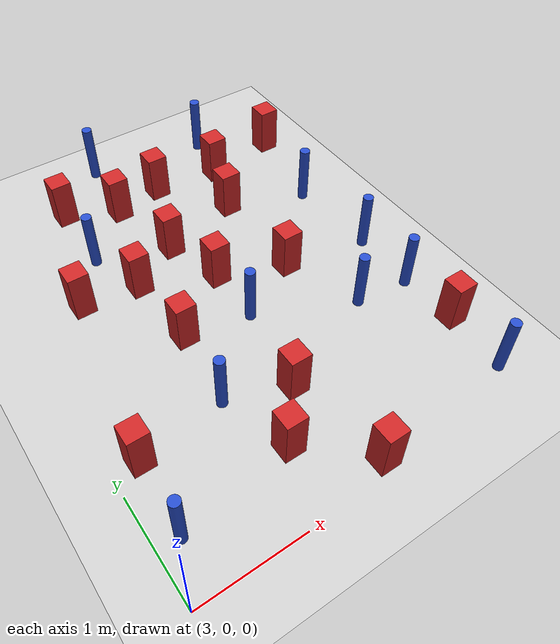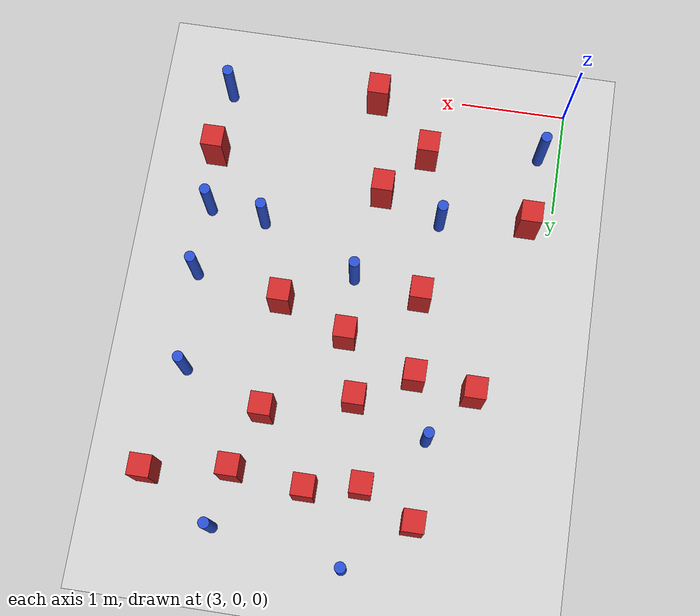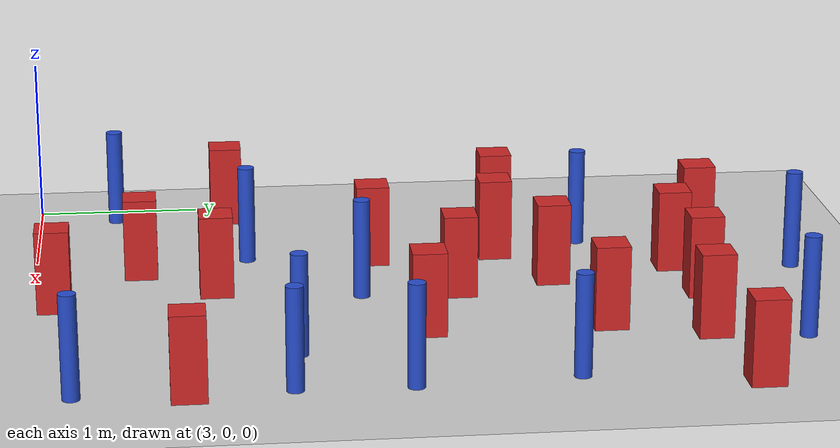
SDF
<sdf version="1.6">
 <world name="default">
  <model name="ground_plane">
   <static>1</static>
   <link name="link">
    <collision name="collision">
     <geometry><plane><normal>0 0 1</normal><size>100 100</size></plane></geometry>
     <surface><friction><ode><mu>100</mu><mu2>50</mu2></ode></friction></surface>
    </collision>
    <visual name="visual">
     <cast_shadows>0</cast_shadows>
     <geometry><plane><normal>0 0 1</normal><size>100 100</size></plane></geometry>
     <material>
      <ambient>1.0 1.0 1.0 1.0</ambient>
      <diffuse>0.8 0.8 0.8 1.0</diffuse>
      <specular>0.01 0.01 0.01 1.000000</specular>
     </material>
    </visual>
   </link>
  </model>
  <model name="pole_obstacle7">
   <static>true</static>
   <pose>6.24190343363 1.45891795342 7.38925637345e-09 -8.471706928e-08 1.24976765134e-08 -1.74513093015e-07</pose>
   <link name="link">
    <pose>0 0 0.3 0 -0 0</pose>
    <inertial>
     <mass>1</mass>
     <inertia><ixx>0.145833</ixx><ixy>0</ixy><ixz>0</ixz><iyy>0.145833</iyy><iyz>0</iyz><izz>0.125</izz></inertia>
    </inertial>
    <collision name="collision">
     <geometry><cylinder><radius>0.05</radius><length>.6</length></cylinder></geometry>
    </collision>
    <visual name="visual">
     <geometry><cylinder><radius>0.05</radius><length>.6</length></cylinder></geometry>
     <material>
      <script><name>Gazebo/Blue</name><uri>file://media/materials/scripts/gazebo.material</uri></script>
     </material>
    </visual>
   </link>
  </model>
  <model name="square_post_obstacle10">
   <static>true</static>
   <pose>3.24088928727 1.18970993105 1.91545236811e-07 -7.35059704564e-06 1.12565212e-07 2.39332434364e-05</pose>
   <link name="link">
    <pose>0 0 0.25 0 -0 0</pose>
    <inertial>
     <mass>100</mass>
     <inertia>
      <ixx>0.166667</ixx>
      <ixy>0</ixy>
      <ixz>0</ixz>
      <iyy>0.166667</iyy>
      <iyz>0</iyz>
      <izz>0.166667</izz>
     </inertia>
    </inertial>
    <collision name="collision"><geometry><box><size>.2 .2 .5</size></box></geometry></collision>
    <visual name="visual">
     <geometry><box><size>.2 .2 .5</size></box></geometry>
     <material>
      <script><name>Gazebo/Red</name><uri>file://media/materials/scripts/gazebo.material</uri></script>
     </material>
    </visual>
   </link>
  </model>
  <model name="pole_obstacle57">
   <static>true</static>
   <pose>5.71323885366 1.51683329573 7.38925637345e-09 -8.471706928e-08 1.24976765134e-08 -1.74513093015e-07</pose>
   <link name="link">
    <pose>0 0 0.3 0 -0 0</pose>
    <inertial>
     <mass>1</mass>
     <inertia><ixx>0.145833</ixx><ixy>0</ixy><ixz>0</ixz><iyy>0.145833</iyy><iyz>0</iyz><izz>0.125</izz></inertia>
    </inertial>
    <collision name="collision">
     <geometry><cylinder><radius>0.05</radius><length>.6</length></cylinder></geometry>
    </collision>
    <visual name="visual">
     <geometry><cylinder><radius>0.05</radius><length>.6</length></cylinder></geometry>
     <material>
      <script><name>Gazebo/Blue</name><uri>file://media/materials/scripts/gazebo.material</uri></script>
     </material>
    </visual>
   </link>
  </model>
  <model name="square_post_obstacle56">
   <static>true</static>
   <pose>3.54915562137 2.89608317039 1.91545236811e-07 -7.35059704564e-06 1.12565212e-07 2.39332434364e-05</pose>
   <link name="link">
    <pose>0 0 0.25 0 -0 0</pose>
    <inertial>
     <mass>100</mass>
     <inertia>
      <ixx>0.166667</ixx>
      <ixy>0</ixy>
      <ixz>0</ixz>
      <iyy>0.166667</iyy>
      <iyz>0</iyz>
      <izz>0.166667</izz>
     </inertia>
    </inertial>
    <collision name="collision"><geometry><box><size>.2 .2 .5</size></box></geometry></collision>
    <visual name="visual">
     <geometry><box><size>.2 .2 .5</size></box></geometry>
     <material>
      <script><name>Gazebo/Red</name><uri>file://media/materials/scripts/gazebo.material</uri></script>
     </material>
    </visual>
   </link>
  </model>
  <model name="square_post_obstacle57">
   <static>true</static>
   <pose>4.61116152091 3.10581729332 1.91545236811e-07 -7.35059704564e-06 1.12565212e-07 2.39332434364e-05</pose>
   <link name="link">
    <pose>0 0 0.25 0 -0 0</pose>
    <inertial>
     <mass>100</mass>
     <inertia>
      <ixx>0.166667</ixx>
      <ixy>0</ixy>
      <ixz>0</ixz>
      <iyy>0.166667</iyy>
      <iyz>0</iyz>
      <izz>0.166667</izz>
     </inertia>
    </inertial>
    <collision name="collision"><geometry><box><size>.2 .2 .5</size></box></geometry></collision>
    <visual name="visual">
     <geometry><box><size>.2 .2 .5</size></box></geometry>
     <material>
      <script><name>Gazebo/Red</name><uri>file://media/materials/scripts/gazebo.material</uri></script>
     </material>
    </visual>
   </link>
  </model>
  <model name="pole_obstacle74">
   <static>true</static>
   <pose>3.20152962979 0.485191721837 7.38925637345e-09 -8.47170692801e-08 1.24976765209e-08 -1.74513093011e-07</pose>
   <link name="link">
    <pose>0 0 0.3 0 -0 0</pose>
    <inertial>
     <mass>1</mass>
     <inertia><ixx>0.145833</ixx><ixy>0</ixy><ixz>0</ixz><iyy>0.145833</iyy><iyz>0</iyz><izz>0.125</izz></inertia>
    </inertial>
    <collision name="collision">
     <geometry><cylinder><radius>0.05</radius><length>.6</length></cylinder></geometry>
    </collision>
    <visual name="visual">
     <geometry><cylinder><radius>0.05</radius><length>.6</length></cylinder></geometry>
     <material>
      <script><name>Gazebo/Blue</name><uri>file://media/materials/scripts/gazebo.material</uri></script>
     </material>
    </visual>
   </link>
  </model>
  <model name="square_post_obstacle65">
   <static>true</static>
   <pose>6.36148696878 4.00992086524 1.91545236811e-07 -7.35059704564e-06 1.12565212e-07 2.39332434364e-05</pose>
   <link name="link">
    <pose>0 0 0.25 0 -0 0</pose>
    <inertial>
     <mass>100</mass>
     <inertia>
      <ixx>0.166667</ixx>
      <ixy>0</ixy>
      <ixz>0</ixz>
      <iyy>0.166667</iyy>
      <iyz>0</iyz>
      <izz>0.166667</izz>
     </inertia>
    </inertial>
    <collision name="collision"><geometry><box><size>.2 .2 .5</size></box></geometry></collision>
    <visual name="visual">
     <geometry><box><size>.2 .2 .5</size></box></geometry>
     <material>
      <script><name>Gazebo/Red</name><uri>file://media/materials/scripts/gazebo.material</uri></script>
     </material>
    </visual>
   </link>
  </model>
  <model name="pole_obstacle83">
   <static>true</static>
   <pose>4.06315226185 1.29344804844 7.38925637345e-09 -8.471706928e-08 1.24976765134e-08 -1.74513093015e-07</pose>
   <link name="link">
    <pose>0 0 0.3 0 -0 0</pose>
    <inertial>
     <mass>1</mass>
     <inertia><ixx>0.145833</ixx><ixy>0</ixy><ixz>0</ixz><iyy>0.145833</iyy><iyz>0</iyz><izz>0.125</izz></inertia>
    </inertial>
    <collision name="collision">
     <geometry><cylinder><radius>0.05</radius><length>.6</length></cylinder></geometry>
    </collision>
    <visual name="visual">
     <geometry><cylinder><radius>0.05</radius><length>.6</length></cylinder></geometry>
     <material>
      <script><name>Gazebo/Blue</name><uri>file://media/materials/scripts/gazebo.material</uri></script>
     </material>
    </visual>
   </link>
  </model>
  <model name="pole_obstacle86">
   <static>true</static>
   <pose>6.24404388155 0.258539240892 7.38925637345e-09 -8.47170692799e-08 1.24976765028e-08 -1.74513093019e-07</pose>
   <link name="link">
    <pose>0 0 0.3 0 -0 0</pose>
    <inertial>
     <mass>1</mass>
     <inertia><ixx>0.145833</ixx><ixy>0</ixy><ixz>0</ixz><iyy>0.145833</iyy><iyz>0</iyz><izz>0.125</izz></inertia>
    </inertial>
    <collision name="collision">
     <geometry><cylinder><radius>0.05</radius><length>.6</length></cylinder></geometry>
    </collision>
    <visual name="visual">
     <geometry><cylinder><radius>0.05</radius><length>.6</length></cylinder></geometry>
     <material>
      <script><name>Gazebo/Blue</name><uri>file://media/materials/scripts/gazebo.material</uri></script>
     </material>
    </visual>
   </link>
  </model>
  <model name="square_post_obstacle90">
   <static>true</static>
   <pose>4.78132902671 2.52356682003 1.91545236811e-07 -7.35059704564e-06 1.12565212e-07 2.39332434364e-05</pose>
   <link name="link">
    <pose>0 0 0.25 0 -0 0</pose>
    <inertial>
     <mass>100</mass>
     <inertia>
      <ixx>0.166667</ixx>
      <ixy>0</ixy>
      <ixz>0</ixz>
      <iyy>0.166667</iyy>
      <iyz>0</iyz>
      <izz>0.166667</izz>
     </inertia>
    </inertial>
    <collision name="collision"><geometry><box><size>.2 .2 .5</size></box></geometry></collision>
    <visual name="visual">
     <geometry><box><size>.2 .2 .5</size></box></geometry>
     <material>
      <script><name>Gazebo/Red</name><uri>file://media/materials/scripts/gazebo.material</uri></script>
     </material>
    </visual>
   </link>
  </model>
  <model name="square_post_obstacle92">
   <static>true</static>
   <pose>6.28551571587 0.887398299702 1.91545236811e-07 -7.35059704564e-06 1.12565212e-07 2.39332434364e-05</pose>
   <link name="link">
    <pose>0 0 0.25 0 -0 0</pose>
    <inertial>
     <mass>100</mass>
     <inertia>
      <ixx>0.166667</ixx>
      <ixy>0</ixy>
      <ixz>0</ixz>
      <iyy>0.166667</iyy>
      <iyz>0</iyz>
      <izz>0.166667</izz>
     </inertia>
    </inertial>
    <collision name="collision"><geometry><box><size>.2 .2 .5</size></box></geometry></collision>
    <visual name="visual">
     <geometry><box><size>.2 .2 .5</size></box></geometry>
     <material>
      <script><name>Gazebo/Red</name><uri>file://media/materials/scripts/gazebo.material</uri></script>
     </material>
    </visual>
   </link>
  </model>
  <model name="square_post_obstacle94">
   <static>true</static>
   <pose>4.10478502225 2.82067833383 1.91545236811e-07 -7.35059704564e-06 1.12565212e-07 2.39332434364e-05</pose>
   <link name="link">
    <pose>0 0 0.25 0 -0 0</pose>
    <inertial>
     <mass>100</mass>
     <inertia>
      <ixx>0.166667</ixx>
      <ixy>0</ixy>
      <ixz>0</ixz>
      <iyy>0.166667</iyy>
      <iyz>0</iyz>
      <izz>0.166667</izz>
     </inertia>
    </inertial>
    <collision name="collision"><geometry><box><size>.2 .2 .5</size></box></geometry></collision>
    <visual name="visual">
     <geometry><box><size>.2 .2 .5</size></box></geometry>
     <material>
      <script><name>Gazebo/Red</name><uri>file://media/materials/scripts/gazebo.material</uri></script>
     </material>
    </visual>
   </link>
  </model>
  <model name="square_post_obstacle96">
   <static>true</static>
   <pose>4.27390219301 0.64078495126 1.91545236811e-07 -7.35059704564e-06 1.12565212e-07 2.39332434364e-05</pose>
   <link name="link">
    <pose>0 0 0.25 0 -0 0</pose>
    <inertial>
     <mass>100</mass>
     <inertia>
      <ixx>0.166667</ixx>
      <ixy>0</ixy>
      <ixz>0</ixz>
      <iyy>0.166667</iyy>
      <iyz>0</iyz>
      <izz>0.166667</izz>
     </inertia>
    </inertial>
    <collision name="collision"><geometry><box><size>.2 .2 .5</size></box></geometry></collision>
    <visual name="visual">
     <geometry><box><size>.2 .2 .5</size></box></geometry>
     <material>
      <script><name>Gazebo/Red</name><uri>file://media/materials/scripts/gazebo.material</uri></script>
     </material>
    </visual>
   </link>
  </model>
  <model name="square_post_obstacle97">
   <static>true</static>
   <pose>4.14987288107 2.05876452631 1.91545236811e-07 -7.35059704564e-06 1.12565212e-07 2.39332434364e-05</pose>
   <link name="link">
    <pose>0 0 0.25 0 -0 0</pose>
    <inertial>
     <mass>100</mass>
     <inertia>
      <ixx>0.166667</ixx>
      <ixy>0</ixy>
      <ixz>0</ixz>
      <iyy>0.166667</iyy>
      <iyz>0</iyz>
      <izz>0.166667</izz>
     </inertia>
    </inertial>
    <collision name="collision"><geometry><box><size>.2 .2 .5</size></box></geometry></collision>
    <visual name="visual">
     <geometry><box><size>.2 .2 .5</size></box></geometry>
     <material>
      <script><name>Gazebo/Red</name><uri>file://media/materials/scripts/gazebo.material</uri></script>
     </material>
    </visual>
   </link>
  </model>
  <model name="square_post_obstacle98">
   <static>true</static>
   <pose>4.43185412169 3.87622848222 1.91545236811e-07 -7.35059704564e-06 1.12565212e-07 2.39332434364e-05</pose>
   <link name="link">
    <pose>0 0 0.25 0 -0 0</pose>
    <inertial>
     <mass>100</mass>
     <inertia>
      <ixx>0.166667</ixx>
      <ixy>0</ixy>
      <ixz>0</ixz>
      <iyy>0.166667</iyy>
      <iyz>0</iyz>
      <izz>0.166667</izz>
     </inertia>
    </inertial>
    <collision name="collision"><geometry><box><size>.2 .2 .5</size></box></geometry></collision>
    <visual name="visual">
     <geometry><box><size>.2 .2 .5</size></box></geometry>
     <material>
      <script><name>Gazebo/Red</name><uri>file://media/materials/scripts/gazebo.material</uri></script>
     </material>
    </visual>
   </link>
  </model>
  <model name="pole_obstacle111">
   <static>true</static>
   <pose>6.25725725224 2.11364150616 7.38925637345e-09 -8.47170692798e-08 1.24976764937e-08 -1.74513093023e-07</pose>
   <link name="link">
    <pose>0 0 0.3 0 -0 0</pose>
    <inertial>
     <mass>1</mass>
     <inertia><ixx>0.145833</ixx><ixy>0</ixy><ixz>0</ixz><iyy>0.145833</iyy><iyz>0</iyz><izz>0.125</izz></inertia>
    </inertial>
    <collision name="collision">
     <geometry><cylinder><radius>0.05</radius><length>.6</length></cylinder></geometry>
    </collision>
    <visual name="visual">
     <geometry><cylinder><radius>0.05</radius><length>.6</length></cylinder></geometry>
     <material>
      <script><name>Gazebo/Blue</name><uri>file://media/materials/scripts/gazebo.material</uri></script>
     </material>
    </visual>
   </link>
  </model>
  <model name="square_post_obstacle109">
   <static>true</static>
   <pose>4.64341971379 1.08641750328 1.91545236811e-07 -7.35059704564e-06 1.12565212e-07 2.39332434364e-05</pose>
   <link name="link">
    <pose>0 0 0.25 0 -0 0</pose>
    <inertial>
     <mass>100</mass>
     <inertia>
      <ixx>0.166667</ixx>
      <ixy>0</ixy>
      <ixz>0</ixz>
      <iyy>0.166667</iyy>
      <iyz>0</iyz>
      <izz>0.166667</izz>
     </inertia>
    </inertial>
    <collision name="collision"><geometry><box><size>.2 .2 .5</size></box></geometry></collision>
    <visual name="visual">
     <geometry><box><size>.2 .2 .5</size></box></geometry>
     <material>
      <script><name>Gazebo/Red</name><uri>file://media/materials/scripts/gazebo.material</uri></script>
     </material>
    </visual>
   </link>
  </model>
  <model name="pole_obstacle121">
   <static>true</static>
   <pose>4.7839199223 1.94315050756 7.38925637345e-09 -8.471706928e-08 1.24976765134e-08 -1.74513093015e-07</pose>
   <link name="link">
    <pose>0 0 0.3 0 -0 0</pose>
    <inertial>
     <mass>1</mass>
     <inertia><ixx>0.145833</ixx><ixy>0</ixy><ixz>0</ixz><iyy>0.145833</iyy><iyz>0</iyz><izz>0.125</izz></inertia>
    </inertial>
    <collision name="collision">
     <geometry><cylinder><radius>0.05</radius><length>.6</length></cylinder></geometry>
    </collision>
    <visual name="visual">
     <geometry><cylinder><radius>0.05</radius><length>.6</length></cylinder></geometry>
     <material>
      <script><name>Gazebo/Blue</name><uri>file://media/materials/scripts/gazebo.material</uri></script>
     </material>
    </visual>
   </link>
  </model>
  <model name="pole_obstacle139">
   <static>true</static>
   <pose>4.5008877238 4.61528263292 7.38925637345e-09 -8.47170692796e-08 1.24976764786e-08 -1.74513093032e-07</pose>
   <link name="link">
    <pose>0 0 0.3 0 -0 0</pose>
    <inertial>
     <mass>1</mass>
     <inertia><ixx>0.145833</ixx><ixy>0</ixy><ixz>0</ixz><iyy>0.145833</iyy><iyz>0</iyz><izz>0.125</izz></inertia>
    </inertial>
    <collision name="collision">
     <geometry><cylinder><radius>0.05</radius><length>.6</length></cylinder></geometry>
    </collision>
    <visual name="visual">
     <geometry><cylinder><radius>0.05</radius><length>.6</length></cylinder></geometry>
     <material>
      <script><name>Gazebo/Blue</name><uri>file://media/materials/scripts/gazebo.material</uri></script>
     </material>
    </visual>
   </link>
  </model>
  <model name="square_post_obstacle135">
   <static>true</static>
   <pose>5.60538178076 3.88804907644 1.91545236811e-07 -7.35059704564e-06 1.12565212e-07 2.39332434364e-05</pose>
   <link name="link">
    <pose>0 0 0.25 0 -0 0</pose>
    <inertial>
     <mass>100</mass>
     <inertia>
      <ixx>0.166667</ixx>
      <ixy>0</ixy>
      <ixz>0</ixz>
      <iyy>0.166667</iyy>
      <iyz>0</iyz>
      <izz>0.166667</izz>
     </inertia>
    </inertial>
    <collision name="collision"><geometry><box><size>.2 .2 .5</size></box></geometry></collision>
    <visual name="visual">
     <geometry><box><size>.2 .2 .5</size></box></geometry>
     <material>
      <script><name>Gazebo/Red</name><uri>file://media/materials/scripts/gazebo.material</uri></script>
     </material>
    </visual>
   </link>
  </model>
  <model name="pole_obstacle149">
   <static>true</static>
   <pose>3.91334375263 3.3724441112 7.38925637345e-09 -8.47170692798e-08 1.24976764939e-08 -1.74513093025e-07</pose>
   <link name="link">
    <pose>0 0 0.3 0 -0 0</pose>
    <inertial>
     <mass>1</mass>
     <inertia><ixx>0.145833</ixx><ixy>0</ixy><ixz>0</ixz><iyy>0.145833</iyy><iyz>0</iyz><izz>0.125</izz></inertia>
    </inertial>
    <collision name="collision">
     <geometry><cylinder><radius>0.05</radius><length>.6</length></cylinder></geometry>
    </collision>
    <visual name="visual">
     <geometry><cylinder><radius>0.05</radius><length>.6</length></cylinder></geometry>
     <material>
      <script><name>Gazebo/Blue</name><uri>file://media/materials/scripts/gazebo.material</uri></script>
     </material>
    </visual>
   </link>
  </model>
  <model name="pole_obstacle164">
   <static>true</static>
   <pose>6.19087508599 3.03423610158 7.38925637345e-09 -8.47170692798e-08 1.24976764937e-08 -1.74513093023e-07</pose>
   <link name="link">
    <pose>0 0 0.3 0 -0 0</pose>
    <inertial>
     <mass>1</mass>
     <inertia><ixx>0.145833</ixx><ixy>0</ixy><ixz>0</ixz><iyy>0.145833</iyy><iyz>0</iyz><izz>0.125</izz></inertia>
    </inertial>
    <collision name="collision">
     <geometry><cylinder><radius>0.05</radius><length>.6</length></cylinder></geometry>
    </collision>
    <visual name="visual">
     <geometry><cylinder><radius>0.05</radius><length>.6</length></cylinder></geometry>
     <material>
      <script><name>Gazebo/Blue</name><uri>file://media/materials/scripts/gazebo.material</uri></script>
     </material>
    </visual>
   </link>
  </model>
  <model name="square_post_obstacle172">
   <static>true</static>
   <pose>5.41440847747 3.31971025382 1.91545236811e-07 -7.35059704564e-06 1.12565212e-07 2.39332434364e-05</pose>
   <link name="link">
    <pose>0 0 0.25 0 -0 0</pose>
    <inertial>
     <mass>100</mass>
     <inertia>
      <ixx>0.166667</ixx>
      <ixy>0</ixy>
      <ixz>0</ixz>
      <iyy>0.166667</iyy>
      <iyz>0</iyz>
      <izz>0.166667</izz>
     </inertia>
    </inertial>
    <collision name="collision"><geometry><box><size>.2 .2 .5</size></box></geometry></collision>
    <visual name="visual">
     <geometry><box><size>.2 .2 .5</size></box></geometry>
     <material>
      <script><name>Gazebo/Red</name><uri>file://media/materials/scripts/gazebo.material</uri></script>
     </material>
    </visual>
   </link>
  </model>
  <model name="pole_obstacle184">
   <static>true</static>
   <pose>5.70371276246 4.41976722074 7.38925637345e-09 -8.47170692796e-08 1.24976764786e-08 -1.74513093032e-07</pose>
   <link name="link">
    <pose>0 0 0.3 0 -0 0</pose>
    <inertial>
     <mass>1</mass>
     <inertia><ixx>0.145833</ixx><ixy>0</ixy><ixz>0</ixz><iyy>0.145833</iyy><iyz>0</iyz><izz>0.125</izz></inertia>
    </inertial>
    <collision name="collision">
     <geometry><cylinder><radius>0.05</radius><length>.6</length></cylinder></geometry>
    </collision>
    <visual name="visual">
     <geometry><cylinder><radius>0.05</radius><length>.6</length></cylinder></geometry>
     <material>
      <script><name>Gazebo/Blue</name><uri>file://media/materials/scripts/gazebo.material</uri></script>
     </material>
    </visual>
   </link>
  </model>
  <model name="square_post_obstacle204">
   <static>true</static>
   <pose>3.93483831885 4.13323538213 1.91545236811e-07 -7.35059704564e-06 1.12565212e-07 2.39332434364e-05</pose>
   <link name="link">
    <pose>0 0 0.25 0 -0 0</pose>
    <inertial>
     <mass>100</mass>
     <inertia>
      <ixx>0.166667</ixx>
      <ixy>0</ixy>
      <ixz>0</ixz>
      <iyy>0.166667</iyy>
      <iyz>0</iyz>
      <izz>0.166667</izz>
     </inertia>
    </inertial>
    <collision name="collision"><geometry><box><size>.2 .2 .5</size></box></geometry></collision>
    <visual name="visual">
     <geometry><box><size>.2 .2 .5</size></box></geometry>
     <material>
      <script><name>Gazebo/Red</name><uri>file://media/materials/scripts/gazebo.material</uri></script>
     </material>
    </visual>
   </link>
  </model>
  <model name="square_post_obstacle206">
   <static>true</static>
   <pose>5.42209443904 2.2688981119 1.91545236811e-07 -7.35059704564e-06 1.12565212e-07 2.39332434364e-05</pose>
   <link name="link">
    <pose>0 0 0.25 0 -0 0</pose>
    <inertial>
     <mass>100</mass>
     <inertia>
      <ixx>0.166667</ixx>
      <ixy>0</ixy>
      <ixz>0</ixz>
      <iyy>0.166667</iyy>
      <iyz>0</iyz>
      <izz>0.166667</izz>
     </inertia>
    </inertial>
    <collision name="collision"><geometry><box><size>.2 .2 .5</size></box></geometry></collision>
    <visual name="visual">
     <geometry><box><size>.2 .2 .5</size></box></geometry>
     <material>
      <script><name>Gazebo/Red</name><uri>file://media/materials/scripts/gazebo.material</uri></script>
     </material>
    </visual>
   </link>
  </model>
  <model name="square_post_obstacle208">
   <static>true</static>
   <pose>4.92811216235 3.96946474582 1.91545236811e-07 -7.35059704564e-06 1.12565212e-07 2.39332434364e-05</pose>
   <link name="link">
    <pose>0 0 0.25 0 -0 0</pose>
    <inertial>
     <mass>100</mass>
     <inertia>
      <ixx>0.166667</ixx>
      <ixy>0</ixy>
      <ixz>0</ixz>
      <iyy>0.166667</iyy>
      <iyz>0</iyz>
      <izz>0.166667</izz>
     </inertia>
    </inertial>
    <collision name="collision"><geometry><box><size>.2 .2 .5</size></box></geometry></collision>
    <visual name="visual">
     <geometry><box><size>.2 .2 .5</size></box></geometry>
     <material>
      <script><name>Gazebo/Red</name><uri>file://media/materials/scripts/gazebo.material</uri></script>
     </material>
    </visual>
   </link>
  </model>
  <model name="square_post_obstacle227">
   <static>true</static>
   <pose>4.8204199648 0.131221988081 1.91545236811e-07 -7.35059704564e-06 1.12565212e-07 2.39332434364e-05</pose>
   <link name="link">
    <pose>0 0 0.25 0 -0 0</pose>
    <inertial>
     <mass>100</mass>
     <inertia>
      <ixx>0.166667</ixx>
      <ixy>0</ixy>
      <ixz>0</ixz>
      <iyy>0.166667</iyy>
      <iyz>0</iyz>
      <izz>0.166667</izz>
     </inertia>
    </inertial>
    <collision name="collision"><geometry><box><size>.2 .2 .5</size></box></geometry></collision>
    <visual name="visual">
     <geometry><box><size>.2 .2 .5</size></box></geometry>
     <material>
      <script><name>Gazebo/Red</name><uri>file://media/materials/scripts/gazebo.material</uri></script>
     </material>
    </visual>
   </link>
  </model>
 </world>
</sdf>
